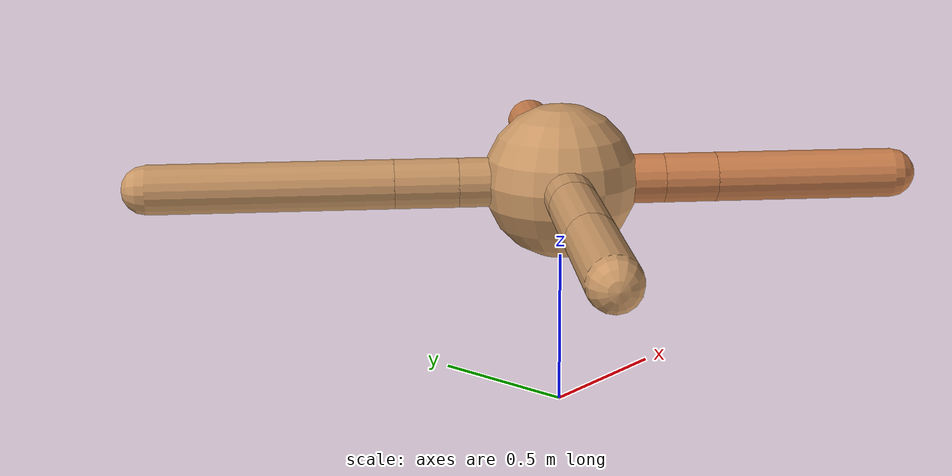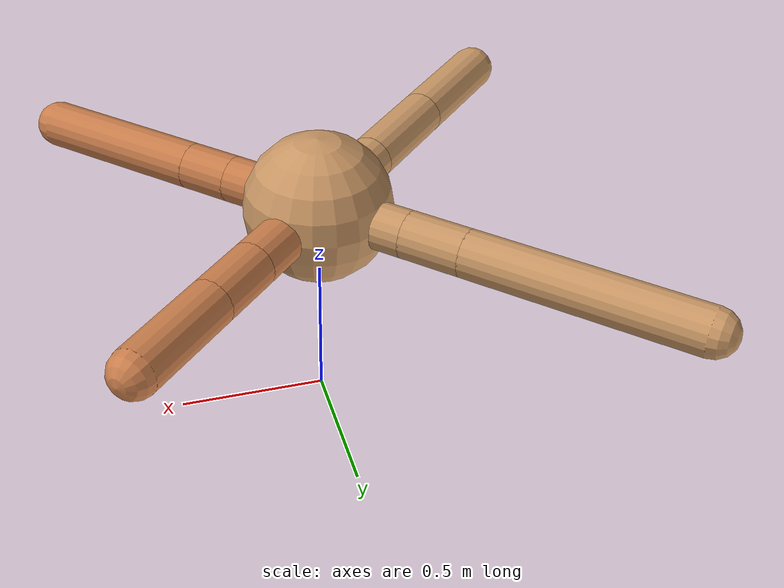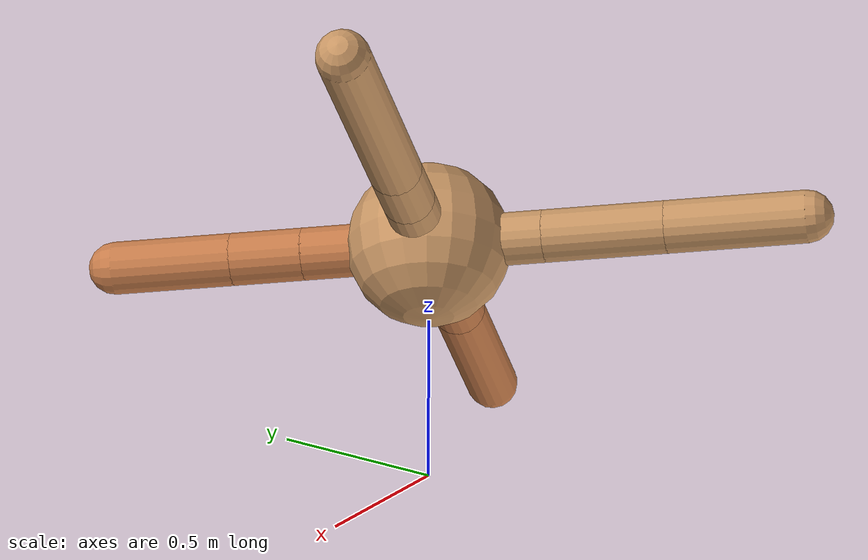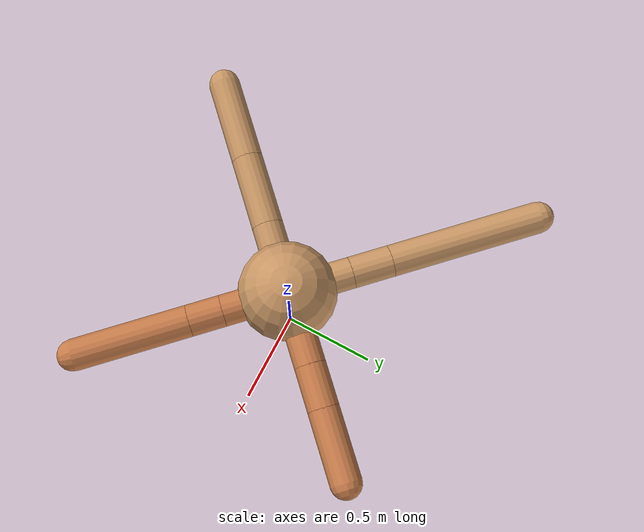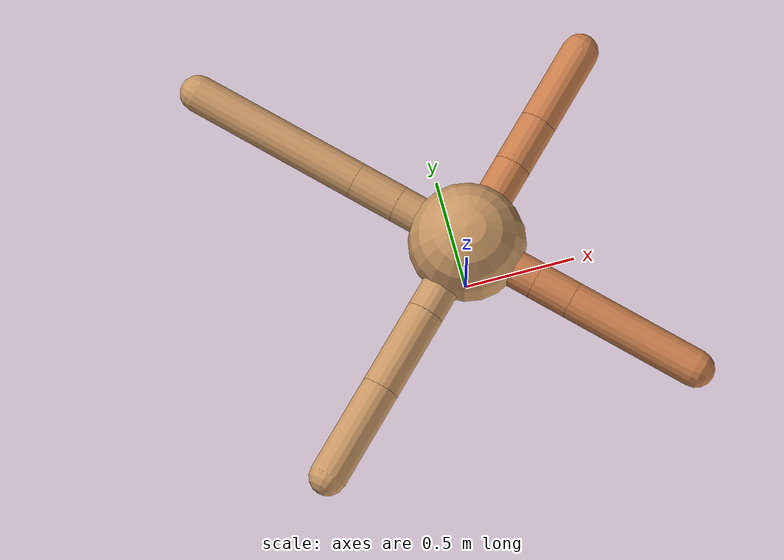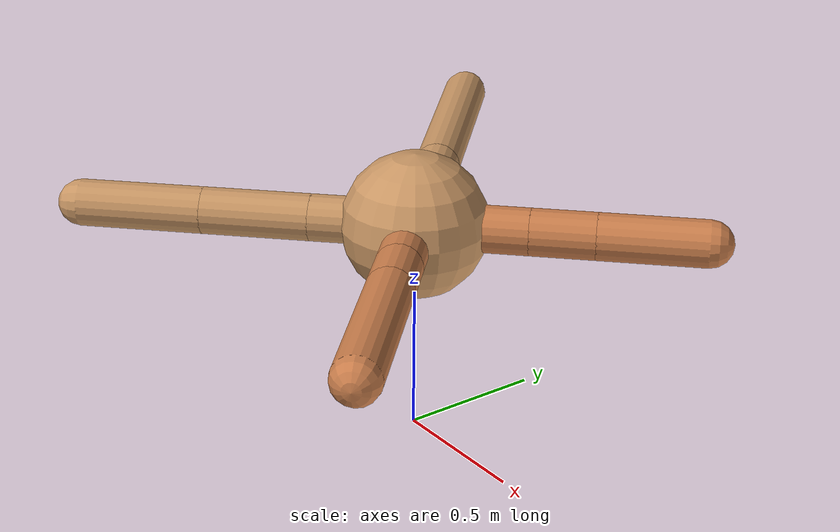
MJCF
<mujoco model="ant">
  <compiler angle="degree" coordinate="local" inertiafromgeom="true" />
  <option integrator="RK4" timestep="0.01" />
  <custom>
    <numeric data="0.0 0.0 0.55 1.0 0.0 0.0 0.0 0.0 1.0 0.0 -1.0 0.0 -1.0 0.0 1.0" name="init_qpos" />
  </custom>
  <default>
    <joint armature="1" damping="1" limited="true" />
    <geom conaffinity="0" condim="3" density="5.0" friction="1.5 0.1 0.1" margin="0.01" rgba="0.8 0.6 0.4 1" />
  </default>
  <worldbody>
    <body name="torso" pos="0 0 0.75">
      <geom name="torso_geom" pos="0 0 0" size="0.25" type="sphere" />

      <body name="front_left_leg" pos="0 0 0">
        <geom fromto="0.0 0.0 0.0 0.271218507275127 0.271218507275127 0.0" name="aux_1_geom" size="0.08" type="capsule" rgba=".8 .5 .3 1" />
        <body name="aux_1" pos="0.271218507275127 0.271218507275127 0.0">
          <joint axis="0 0 1" name="hip_1" pos="0.0 0.0 0.0" range="-40 40" type="hinge" />
          <geom fromto="0.0 0.0 0.0 0.1555855015551093 0.1555855015551093 0.0" name="left_leg_geom" size="0.08" type="capsule" rgba=".8 .5 .3 1" />
          <body pos="0.1555855015551093 0.1555855015551093 0.0" name="front_left_foot">
            <joint axis="-1 1 0" name="ankle_1" pos="0.0 0.0 0.0" range="30 100" type="hinge" />
            <geom fromto="0.0 0.0 0.0 0.2594914248399109 0.2594914248399109 0.0" name="left_ankle_geom" size="0.08" type="capsule" rgba=".8 .5 .3 1" />
          </body>
        </body>
      </body>
      <body name="front_right_leg" pos="0 0 0">
        <geom fromto="0.0 0.0 0.0 -0.23416528499406045 0.23416528499406045 0.0" name="aux_2_geom" size="0.08" type="capsule" />
        <body name="aux_2" pos="-0.23416528499406045 0.23416528499406045 0.0">
          <joint axis="0 0 1" name="hip_2" pos="0.0 0.0 0.0" range="-40 40" type="hinge" />
          <geom fromto="0.0 0.0 0.0 -0.14540876976287792 0.14540876976287792 0.0" name="right_leg_geom" size="0.08" type="capsule" />
          <body pos="-0.14540876976287792 0.14540876976287792 0.0" name="front_right_foot">
            <joint axis="1 1 0" name="ankle_2" pos="0.0 0.0 0.0" range="-100 -30" type="hinge" />
            <geom fromto="0.0 0.0 0.0 -0.550801468231961 0.550801468231961 0.0" name="right_ankle_geom" size="0.08" type="capsule" />
          </body>
        </body>
      </body>
      <body name="left_back_leg" pos="0 0 0">
        <geom fromto="0.0 0.0 0.0 -0.24937172217858905 -0.24937172217858905 0.0" name="aux_3_geom" size="0.08" type="capsule" />
        <body name="aux_3" pos="-0.24937172217858905 -0.24937172217858905 0.0">
          <joint axis="0 0 1" name="hip_3" pos="0.0 0.0 0.0" range="-40 40" type="hinge" />
          <geom fromto="0.0 0.0 0.0 -0.26164848763176773 -0.26164848763176773 0.0" name="back_leg_geom" size="0.08" type="capsule" />
          <body pos="-0.26164848763176773 -0.26164848763176773 0.0" name="left_back_foot">
            <joint axis="-1 1 0" name="ankle_3" pos="0.0 0.0 0.0" range="-100 -30" type="hinge" />
            <geom fromto="0.0 0.0 0.0 -0.3020755166914195 -0.3020755166914195 0.0" name="third_ankle_geom" size="0.08" type="capsule" />
          </body>
        </body>
      </body>
      <body name="right_back_leg" pos="0 0 0">
        <geom fromto="0.0 0.0 0.0 0.23594296102747903 -0.23594296102747903 0.0" name="aux_4_geom" size="0.08" type="capsule" rgba=".8 .5 .3 1" />
        <body name="aux_4" pos="0.23594296102747903 -0.23594296102747903 0.0">
          <joint axis="0 0 1" name="hip_4" pos="0.0 0.0 0.0" range="-40 40" type="hinge" />
          <geom fromto="0.0 0.0 0.0 0.12107338729476139 -0.12107338729476139 0.0" name="rightback_leg_geom" size="0.08" type="capsule" rgba=".8 .5 .3 1" />
          <body pos="0.12107338729476139 -0.12107338729476139 0.0" name="right_back_foot">
            <joint axis="1 1 0" name="ankle_4" pos="0.0 0.0 0.0" range="30 100" type="hinge" />
            <geom fromto="0.0 0.0 0.0 0.41395781742684873 -0.41395781742684873 0.0" name="fourth_ankle_geom" size="0.08" type="capsule" rgba=".8 .5 .3 1" />
          </body>
        </body>
      </body>
    </body>
  </worldbody>
  <actuator>
    <motor ctrllimited="true" ctrlrange="-1.0 1.0" joint="hip_4" gear="150" />
    <motor ctrllimited="true" ctrlrange="-1.0 1.0" joint="ankle_4" gear="150" />
    <motor ctrllimited="true" ctrlrange="-1.0 1.0" joint="hip_1" gear="150" />
    <motor ctrllimited="true" ctrlrange="-1.0 1.0" joint="ankle_1" gear="150" />
    <motor ctrllimited="true" ctrlrange="-1.0 1.0" joint="hip_2" gear="150" />
    <motor ctrllimited="true" ctrlrange="-1.0 1.0" joint="ankle_2" gear="150" />
    <motor ctrllimited="true" ctrlrange="-1.0 1.0" joint="hip_3" gear="150" />
    <motor ctrllimited="true" ctrlrange="-1.0 1.0" joint="ankle_3" gear="150" />
  </actuator>
</mujoco>
